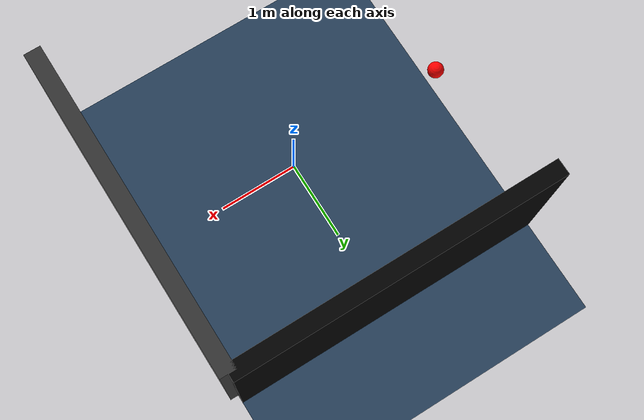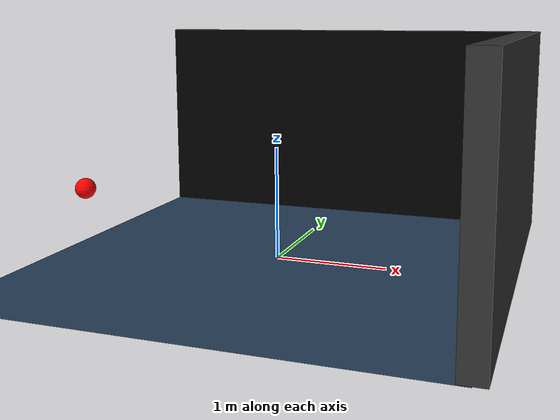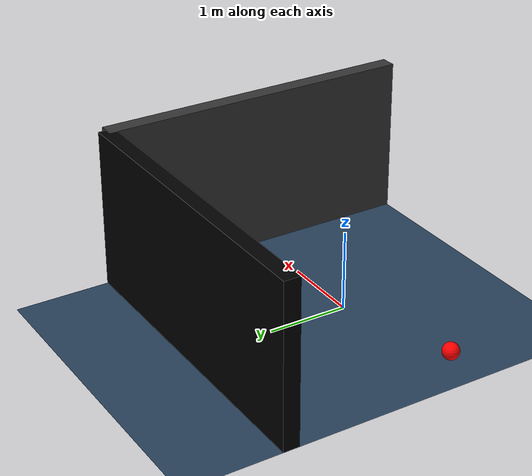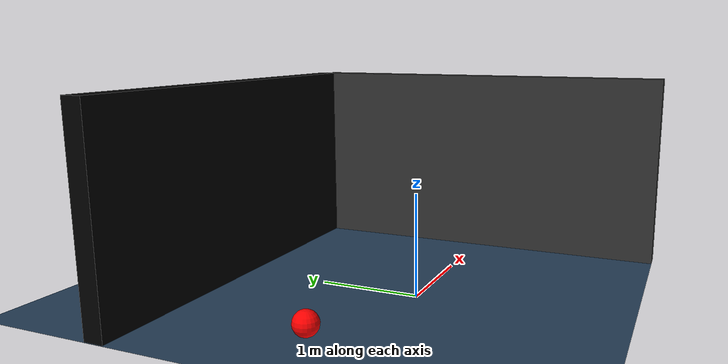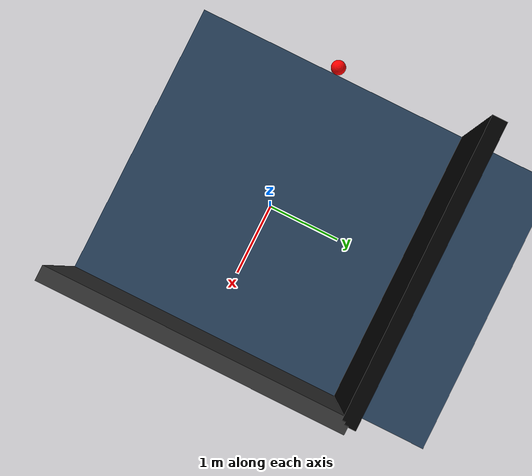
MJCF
<mujoco>
  <option timestep="0.01" gravity="0 0 0" iterations="1" solver="Newton" integrator="Euler" tolerance="1e-8" />
  <visual>
    <headlight ambient=".4 .4 .4" diffuse=".8 .8 .8" specular="0.1 0.1 0.1"/>
    <map znear=".01"/>
    <quality shadowsize="2048"/>
  </visual>
  <asset>
    <texture name="skybox" type="skybox" builtin="gradient" rgb1=".4 .6 .8" rgb2="0 0 0"
             width="800" height="800" mark="random" markrgb="1 1 1"/>
  </asset>
  <asset>
    <texture name="grid" type="2d" builtin="checker" rgb1=".1 .2 .3" rgb2=".2 .3 .4"
             width="300" height="300" mark="edge" markrgb=".2 .3 .4"/>
    <material name="grid" texture="grid" texrepeat="1 1" texuniform="true" reflectance=".2"/>
  </asset>

  <worldbody>
    <!-- Enlarged grid floor -->
    <body name="ground" pos="0 1 0">
      <geom type="plane" size="2 3 0.1" material="grid"
          friction="0 0 0"
          condim="1"
          solref="-20000 -10"
          solimp="0.9999 0.9999 0.00005 0.5 2"/>
    </body>

    <!-- Ball starts at (-2, 0, 0.5) -->
    <body name="ball" pos="-2 0 0.5">
      <joint name="ball_joint" type="free"/>
      <geom type="sphere" size="0.1" mass="0.1" rgba="1 0 0 1"/>
    </body>

    <!-- North wall to enclose the space -->
    <body name="wall_north" pos="0 2 1">
      <geom type="box" size="2 0.1 1" rgba="0 0 0 1"/>
    </body>

    <!-- East wall positioned to be hit at (2, 0, 1) -->
    <body name="wall_east" pos="2 0 1">
      <geom type="box" size="0.1 2 1" rgba="0.2 0.2 0.2 1" friction="0 0 0"
          condim="1"
          solref="-20000 -10"
          solimp="0.9999 0.9999 0.00005 0.5 2"/>
    </body>

  </worldbody>

  <!-- Totally redundant control - just so the rest of the code does not break-->
  <actuator>
    <motor name="dummy_cntrl" joint="ball_joint" gear="0"/>
  </actuator>

</mujoco>
